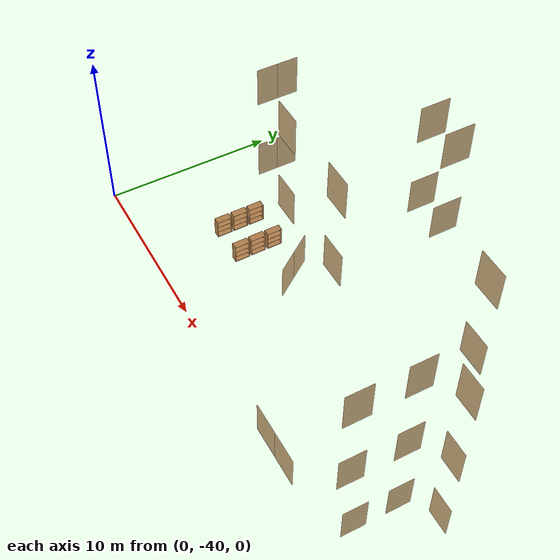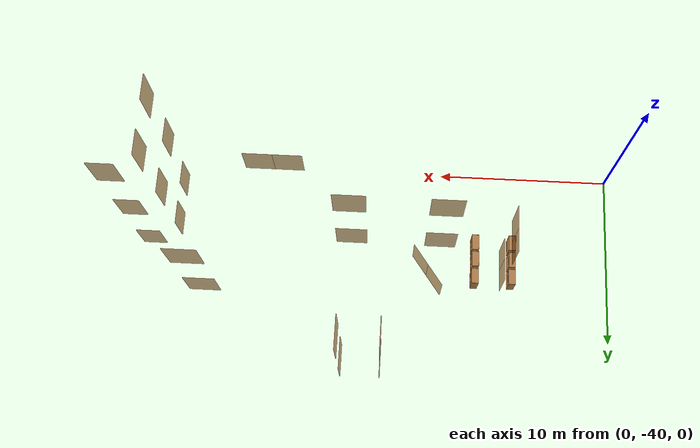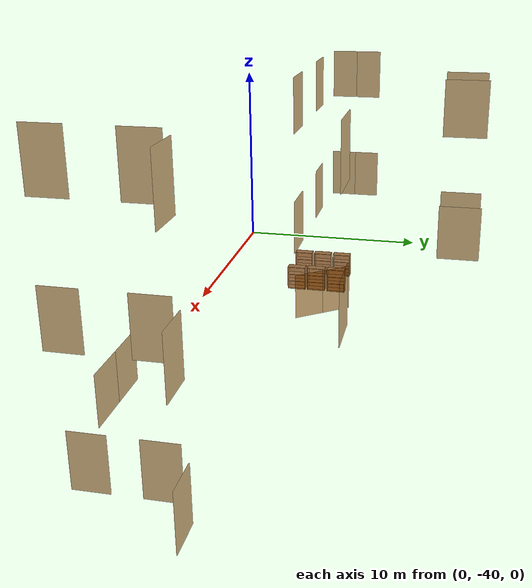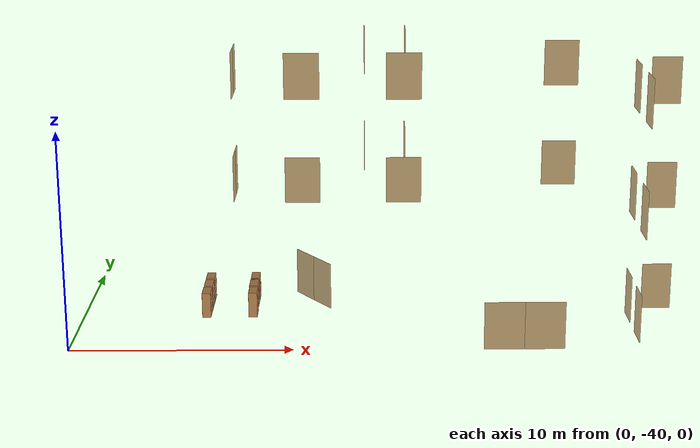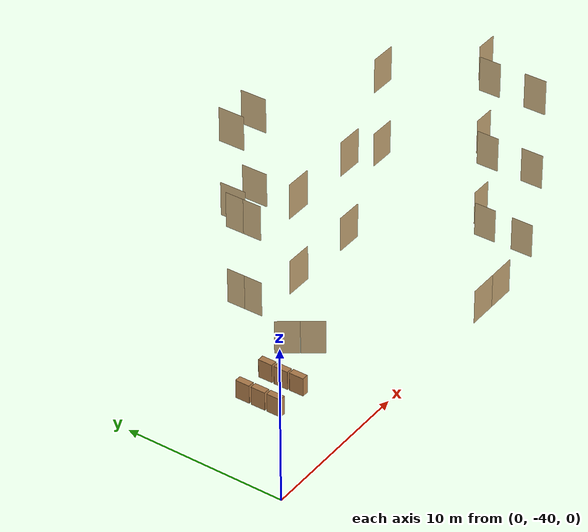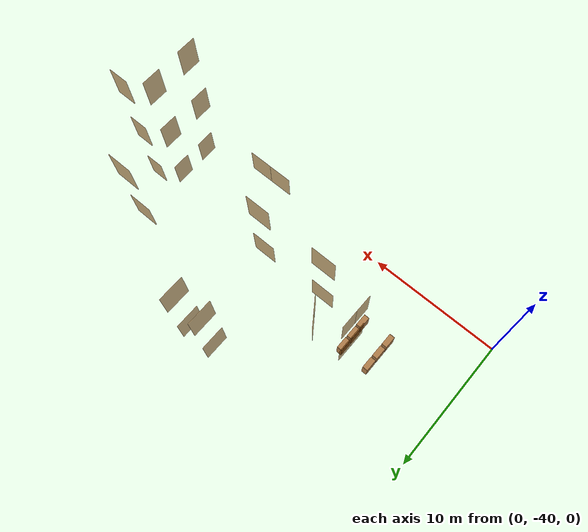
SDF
<sdf version="1.7">
 <world name="world">
  <include><uri>model://sun</uri></include>
  <include>
   <name>OpenRobotics/Bookshelf</name>
   <uri>model://Bookshelf</uri>
   <pose>7.7139641843624664 -35.508689695664955 0.0 0 0 1.5708</pose>
   <static>True</static>
  </include>
  <include>
   <name>OpenRobotics/Bookshelf_2</name>
   <uri>model://Bookshelf</uri>
   <pose>7.694500440356203 -34.4870372182536 0.0 0 0 1.5708</pose>
   <static>True</static>
  </include>
  <include>
   <name>OpenRobotics/Bookshelf_3</name>
   <uri>model://Bookshelf</uri>
   <pose>7.704204586228271 -33.44592099683598 0.0 0 0 1.5708</pose>
   <static>True</static>
  </include>
  <include>
   <name>OpenRobotics/Bookshelf_4</name>
   <uri>model://Bookshelf</uri>
   <pose>5.544117167367978 -35.54761718367748 0.0 0 0 1.5708</pose>
   <static>True</static>
  </include>
  <include>
   <name>OpenRobotics/Bookshelf_5</name>
   <uri>model://Bookshelf</uri>
   <pose>5.544117167367978 -34.51620510813193 0.0 0 0 1.5708</pose>
   <static>True</static>
  </include>
  <include>
   <name>OpenRobotics/Bookshelf_6</name>
   <uri>model://Bookshelf</uri>
   <pose>5.544117167367978 -33.484848484848506 0.0 0 0 1.5708</pose>
   <static>True</static>
  </include>
  <model name="L1_door1">
   <pose>10.709634015069973 -33.66240662817629 0.0 0 0 2.1908053757712316</pose>
   <link name="right">
    <pose>0.7171762283854256 0 1.11 0 0 0</pose>
    <visual name="right_visual">
     <geometry><box><size>1.4243524567708512 0.03 2.2</size></box></geometry>
     <material><ambient>0.5 0.25 0 0.6</ambient><diffuse>0.5 0.25 0 0.6</diffuse></material>
    </visual>
    <collision name="right_collision">
     <geometry><box><size>1.4243524567708512 0.03 2.2</size></box></geometry>
     <surface><contact><collide_bitmask>0x02</collide_bitmask></contact></surface>
    </collision>
    <inertial>
     <mass>50.0</mass>
     <inertia><ixx>20.17041666666667</ixx><iyy>28.619916337954837</iyy><izz>8.456999671288166</izz></inertia>
    </inertial>
   </link>
   <joint name="right_joint" type="revolute">
    <parent>world</parent>
    <child>right</child>
    <axis><xyz>0 0 1</xyz><limit><lower>0</lower><upper>1.57</upper></limit></axis>
    <pose>0.7171762283854256 0 0 0 0 0</pose>
   </joint>
   <link name="left">
    <pose>-0.7171762283854256 0 1.11 0 0 0</pose>
    <visual name="left_visual">
     <geometry><box><size>1.4243524567708512 0.03 2.2</size></box></geometry>
     <material><ambient>0.5 0.25 0 0.6</ambient><diffuse>0.5 0.25 0 0.6</diffuse></material>
    </visual>
    <collision name="left_collision">
     <geometry><box><size>1.4243524567708512 0.03 2.2</size></box></geometry>
     <surface><contact><collide_bitmask>0x02</collide_bitmask></contact></surface>
    </collision>
    <inertial>
     <mass>50.0</mass>
     <inertia><ixx>20.17041666666667</ixx><iyy>28.619916337954837</iyy><izz>8.456999671288166</izz></inertia>
    </inertial>
   </link>
   <joint name="left_joint" type="revolute">
    <parent>world</parent>
    <child>left</child>
    <axis><xyz>0 0 1</xyz><limit><lower>-1.57</lower><upper>0</upper></limit></axis>
    <pose>-0.7171762283854256 0 0 0 0 0</pose>
   </joint>
   <plugin name="double_hinged_door" filename="libdouble_hinged_door_plugin.so">
    <ros><namespace>/doors/L1_door1</namespace></ros>
    <right_joint>right_joint</right_joint>
    <left_joint>left_joint</left_joint>
    <open_angle>1.57</open_angle>
    <kp>150.0</kp>
    <kd>80.0</kd>
   </plugin>
  </model>
  <model name="L1_door3">
   <pose>20.250916593273978 -40.03653325504781 0.0 0 0 3.141592653589793</pose>
   <link name="right">
    <pose>0.9032757608376549 0 1.11 0 0 0</pose>
    <visual name="right_visual">
     <geometry><box><size>1.7965515216753098 0.03 2.2</size></box></geometry>
     <material><ambient>0.5 0.25 0 0.6</ambient><diffuse>0.5 0.25 0 0.6</diffuse></material>
    </visual>
    <collision name="right_collision">
     <geometry><box><size>1.7965515216753098 0.03 2.2</size></box></geometry>
     <surface><contact><collide_bitmask>0x02</collide_bitmask></contact></surface>
    </collision>
    <inertial>
     <mass>50.0</mass>
     <inertia><ixx>20.17041666666667</ixx><iyy>33.61498904180781</iyy><izz>13.452072375141132</izz></inertia>
    </inertial>
   </link>
   <joint name="right_joint" type="prismatic">
    <parent>world</parent>
    <child>right</child>
    <axis>
     <xyz>1 0 0</xyz>
     <limit><lower>0.0</lower><upper>1.8065515216753099</upper><effort>500.0</effort></limit>
    </axis>
   </joint>
   <link name="left">
    <pose>-0.9032757608376549 0 1.11 0 0 0</pose>
    <visual name="left_visual">
     <geometry><box><size>1.7965515216753098 0.03 2.2</size></box></geometry>
     <material><ambient>0.5 0.25 0 0.6</ambient><diffuse>0.5 0.25 0 0.6</diffuse></material>
    </visual>
    <collision name="left_collision">
     <geometry><box><size>1.7965515216753098 0.03 2.2</size></box></geometry>
     <surface><contact><collide_bitmask>0x02</collide_bitmask></contact></surface>
    </collision>
    <inertial>
     <mass>50.0</mass>
     <inertia><ixx>20.17041666666667</ixx><iyy>33.61498904180781</iyy><izz>13.452072375141132</izz></inertia>
    </inertial>
   </link>
   <joint name="left_joint" type="prismatic">
    <parent>world</parent>
    <child>left</child>
    <axis>
     <xyz>1 0 0</xyz>
     <limit><lower>-1.8065515216753099</lower><upper>0.0</upper><effort>500.0</effort></limit>
    </axis>
   </joint>
   <plugin name="double_sliding_door" filename="libdouble_sliding_door_plugin.so">
    <ros><namespace>/doors/L1_door3</namespace></ros>
    <right_joint>right_joint</right_joint>
    <left_joint>left_joint</left_joint>
    <open_distance>1.3</open_distance>
    <kp>100.0</kp>
    <kd>120.0</kd>
   </plugin>
  </model>
  <model name="L1_door_stair2">
   <pose>27.032977786476188 -34.93492513944615 0.0 0 0 3.141592653589793</pose>
   <link name="right">
    <pose>0 0 1.11 0 0 0</pose>
    <visual name="right_visual">
     <geometry><box><size>1.3763065531526253 0.03 2.2</size></box></geometry>
     <material><ambient>0.5 0.25 0 0.6</ambient><diffuse>0.5 0.25 0 0.6</diffuse></material>
    </visual>
    <collision name="right_collision">
     <geometry><box><size>1.3763065531526253 0.03 2.2</size></box></geometry>
     <surface><contact><collide_bitmask>0x02</collide_bitmask></contact></surface>
    </collision>
    <inertial>
     <mass>50.0</mass>
     <inertia><ixx>20.17041666666667</ixx><iyy>28.059248867711922</iyy><izz>7.896332201045251</izz></inertia>
    </inertial>
   </link>
   <joint name="right_joint" type="revolute">
    <parent>world</parent>
    <child>right</child>
    <axis><xyz>0 0 1</xyz><limit><lower>0</lower><upper>1.57</upper></limit></axis>
    <pose>0.6931532765763126 0 0 0 0 0</pose>
   </joint>
   <plugin name="single_hinged_door" filename="libsingle_hinged_door_plugin.so">
    <ros><namespace>/doors/L1_door_stair2</namespace></ros>
    <right_joint>right_joint</right_joint>
    <open_angle>1.57</open_angle>
    <kp>150.0</kp>
    <kd>80.0</kd>
   </plugin>
  </model>
  <model name="L1_door_toilet">
   <pose>25.5080405780083 -38.67795283295823 0.0 0 0 1.5707963267948966</pose>
   <link name="right">
    <pose>0 0 1.11 0 0 0</pose>
    <visual name="right_visual">
     <geometry><box><size>1.3763065531526217 0.03 2.2</size></box></geometry>
     <material><ambient>0.5 0.25 0 0.6</ambient><diffuse>0.5 0.25 0 0.6</diffuse></material>
    </visual>
    <collision name="right_collision">
     <geometry><box><size>1.3763065531526217 0.03 2.2</size></box></geometry>
     <surface><contact><collide_bitmask>0x02</collide_bitmask></contact></surface>
    </collision>
    <inertial>
     <mass>50.0</mass>
     <inertia><ixx>20.17041666666667</ixx><iyy>28.059248867711883</iyy><izz>7.89633220104521</izz></inertia>
    </inertial>
   </link>
   <joint name="right_joint" type="revolute">
    <parent>world</parent>
    <child>right</child>
    <axis><xyz>0 0 1</xyz><limit><lower>0</lower><upper>1.57</upper></limit></axis>
    <pose>0.6931532765763109 0 0 0 0 0</pose>
   </joint>
   <plugin name="single_hinged_door" filename="libsingle_hinged_door_plugin.so">
    <ros><namespace>/doors/L1_door_toilet</namespace></ros>
    <right_joint>right_joint</right_joint>
    <open_angle>1.57</open_angle>
    <kp>150.0</kp>
    <kd>80.0</kd>
   </plugin>
  </model>
  <model name="L1_door_stair1">
   <pose>25.5080405780083 -36.18260103728351 0.0 0 0 -1.5707963267948966</pose>
   <link name="right">
    <pose>0 0 1.11 0 0 0</pose>
    <visual name="right_visual">
     <geometry><box><size>1.3763065531526217 0.03 2.2</size></box></geometry>
     <material><ambient>0.5 0.25 0 0.6</ambient><diffuse>0.5 0.25 0 0.6</diffuse></material>
    </visual>
    <collision name="right_collision">
     <geometry><box><size>1.3763065531526217 0.03 2.2</size></box></geometry>
     <surface><contact><collide_bitmask>0x02</collide_bitmask></contact></surface>
    </collision>
    <inertial>
     <mass>50.0</mass>
     <inertia><ixx>20.17041666666667</ixx><iyy>28.059248867711883</iyy><izz>7.89633220104521</izz></inertia>
    </inertial>
   </link>
   <joint name="right_joint" type="revolute">
    <parent>world</parent>
    <child>right</child>
    <axis><xyz>0 0 -1</xyz><limit><lower>0</lower><upper>1.57</upper></limit></axis>
    <pose>0.6931532765763109 0 0 0 0 0</pose>
   </joint>
   <plugin name="single_hinged_door" filename="libsingle_hinged_door_plugin.so">
    <ros><namespace>/doors/L1_door_stair1</namespace></ros>
    <right_joint>right_joint</right_joint>
    <open_angle>1.57</open_angle>
    <kp>150.0</kp>
    <kd>80.0</kd>
   </plugin>
  </model>
  <model name="L2_door10">
   <pose>6.967646280829374 -32.68448629721379 5.0 0 0 1.5705221665011055</pose>
   <link name="right">
    <pose>0.5645263305892074 0 1.11 0 0 0</pose>
    <visual name="right_visual">
     <geometry><box><size>1.1190526611784148 0.03 2.2</size></box></geometry>
     <material><ambient>0.5 0.25 0 0.6</ambient><diffuse>0.5 0.25 0 0.6</diffuse></material>
    </visual>
    <collision name="right_collision">
     <geometry><box><size>1.1190526611784148 0.03 2.2</size></box></geometry>
     <surface><contact><collide_bitmask>0x02</collide_bitmask></contact></surface>
    </collision>
    <inertial>
     <mass>50.0</mass>
     <inertia><ixx>20.17041666666667</ixx><iyy>25.38449524371039</iyy><izz>5.221578577043717</izz></inertia>
    </inertial>
   </link>
   <joint name="right_joint" type="revolute">
    <parent>world</parent>
    <child>right</child>
    <axis><xyz>0 0 -1</xyz><limit><lower>0</lower><upper>1.57</upper></limit></axis>
    <pose>0.5645263305892074 0 0 0 0 0</pose>
   </joint>
   <link name="left">
    <pose>-0.5645263305892074 0 1.11 0 0 0</pose>
    <visual name="left_visual">
     <geometry><box><size>1.1190526611784148 0.03 2.2</size></box></geometry>
     <material><ambient>0.5 0.25 0 0.6</ambient><diffuse>0.5 0.25 0 0.6</diffuse></material>
    </visual>
    <collision name="left_collision">
     <geometry><box><size>1.1190526611784148 0.03 2.2</size></box></geometry>
     <surface><contact><collide_bitmask>0x02</collide_bitmask></contact></surface>
    </collision>
    <inertial>
     <mass>50.0</mass>
     <inertia><ixx>20.17041666666667</ixx><iyy>25.38449524371039</iyy><izz>5.221578577043717</izz></inertia>
    </inertial>
   </link>
   <joint name="left_joint" type="revolute">
    <parent>world</parent>
    <child>left</child>
    <axis><xyz>0 0 -1</xyz><limit><lower>-1.57</lower><upper>0</upper></limit></axis>
    <pose>-0.5645263305892074 0 0 0 0 0</pose>
   </joint>
   <plugin name="double_hinged_door" filename="libdouble_hinged_door_plugin.so">
    <ros><namespace>/doors/L2_door10</namespace></ros>
    <right_joint>right_joint</right_joint>
    <left_joint>left_joint</left_joint>
    <open_angle>1.57</open_angle>
    <kp>150.0</kp>
    <kd>80.0</kd>
   </plugin>
  </model>
  <model name="L2_door8">
   <pose>15.236484194825934 -27.379453744808572 5.0 0 0 1.5705221665011058</pose>
   <link name="right">
    <pose>0 0 1.11 0 0 0</pose>
    <visual name="right_visual">
     <geometry><box><size>1.6545737934173281 0.03 2.2</size></box></geometry>
     <material><ambient>0.5 0.25 0 0.6</ambient><diffuse>0.5 0.25 0 0.6</diffuse></material>
    </visual>
    <collision name="right_collision">
     <geometry><box><size>1.6545737934173281 0.03 2.2</size></box></geometry>
     <surface><contact><collide_bitmask>0x02</collide_bitmask></contact></surface>
    </collision>
    <inertial>
     <mass>50.0</mass>
     <inertia><ixx>20.17041666666667</ixx><iyy>31.573393491097537</iyy><izz>11.410476824430864</izz></inertia>
    </inertial>
   </link>
   <joint name="right_joint" type="revolute">
    <parent>world</parent>
    <child>right</child>
    <axis><xyz>0 0 1</xyz><limit><lower>0</lower><upper>1.57</upper></limit></axis>
    <pose>0.8322868967086641 0 0 0 0 0</pose>
   </joint>
   <plugin name="single_hinged_door" filename="libsingle_hinged_door_plugin.so">
    <ros><namespace>/doors/L2_door8</namespace></ros>
    <right_joint>right_joint</right_joint>
    <open_angle>1.57</open_angle>
    <kp>150.0</kp>
    <kd>80.0</kd>
   </plugin>
  </model>
  <model name="L2_door9">
   <pose>22.726107627620856 -30.877112199768717 5.0 0 0 3.1413184932960023</pose>
   <link name="right">
    <pose>0 0 1.11 0 0 0</pose>
    <visual name="right_visual">
     <geometry><box><size>1.6545737934173281 0.03 2.2</size></box></geometry>
     <material><ambient>0.5 0.25 0 0.6</ambient><diffuse>0.5 0.25 0 0.6</diffuse></material>
    </visual>
    <collision name="right_collision">
     <geometry><box><size>1.6545737934173281 0.03 2.2</size></box></geometry>
     <surface><contact><collide_bitmask>0x02</collide_bitmask></contact></surface>
    </collision>
    <inertial>
     <mass>50.0</mass>
     <inertia><ixx>20.17041666666667</ixx><iyy>31.573393491097537</iyy><izz>11.410476824430864</izz></inertia>
    </inertial>
   </link>
   <joint name="right_joint" type="revolute">
    <parent>world</parent>
    <child>right</child>
    <axis><xyz>0 0 1</xyz><limit><lower>0</lower><upper>1.57</upper></limit></axis>
    <pose>0.8322868967086641 0 0 0 0 0</pose>
   </joint>
   <plugin name="single_hinged_door" filename="libsingle_hinged_door_plugin.so">
    <ros><namespace>/doors/L2_door9</namespace></ros>
    <right_joint>right_joint</right_joint>
    <open_angle>1.57</open_angle>
    <kp>150.0</kp>
    <kd>80.0</kd>
   </plugin>
  </model>
  <model name="L2_door7">
   <pose>13.183509926765973 -27.378890900765995 5.0 0 0 1.5705221665011058</pose>
   <link name="right">
    <pose>0 0 1.11 0 0 0</pose>
    <visual name="right_visual">
     <geometry><box><size>1.6545737934173281 0.03 2.2</size></box></geometry>
     <material><ambient>0.5 0.25 0 0.6</ambient><diffuse>0.5 0.25 0 0.6</diffuse></material>
    </visual>
    <collision name="right_collision">
     <geometry><box><size>1.6545737934173281 0.03 2.2</size></box></geometry>
     <surface><contact><collide_bitmask>0x02</collide_bitmask></contact></surface>
    </collision>
    <inertial>
     <mass>50.0</mass>
     <inertia><ixx>20.17041666666667</ixx><iyy>31.573393491097537</iyy><izz>11.410476824430864</izz></inertia>
    </inertial>
   </link>
   <joint name="right_joint" type="revolute">
    <parent>world</parent>
    <child>right</child>
    <axis><xyz>0 0 -1</xyz><limit><lower>0</lower><upper>1.57</upper></limit></axis>
    <pose>0.8322868967086641 0 0 0 0 0</pose>
   </joint>
   <plugin name="single_hinged_door" filename="libsingle_hinged_door_plugin.so">
    <ros><namespace>/doors/L2_door7</namespace></ros>
    <right_joint>right_joint</right_joint>
    <open_angle>1.57</open_angle>
    <kp>150.0</kp>
    <kd>80.0</kd>
   </plugin>
  </model>
  <model name="L2_door11">
   <pose>10.240967986111862 -33.92540800608541 5.0 0 0 3.1413184932960045</pose>
   <link name="right">
    <pose>0 0 1.11 0 0 0</pose>
    <visual name="right_visual">
     <geometry><box><size>1.6545737934173281 0.03 2.2</size></box></geometry>
     <material><ambient>0.5 0.25 0 0.6</ambient><diffuse>0.5 0.25 0 0.6</diffuse></material>
    </visual>
    <collision name="right_collision">
     <geometry><box><size>1.6545737934173281 0.03 2.2</size></box></geometry>
     <surface><contact><collide_bitmask>0x02</collide_bitmask></contact></surface>
    </collision>
    <inertial>
     <mass>50.0</mass>
     <inertia><ixx>20.17041666666667</ixx><iyy>31.573393491097537</iyy><izz>11.410476824430864</izz></inertia>
    </inertial>
   </link>
   <joint name="right_joint" type="revolute">
    <parent>world</parent>
    <child>right</child>
    <axis><xyz>0 0 -1</xyz><limit><lower>0</lower><upper>1.57</upper></limit></axis>
    <pose>0.8322868967086641 0 0 0 0 0</pose>
   </joint>
   <plugin name="single_hinged_door" filename="libsingle_hinged_door_plugin.so">
    <ros><namespace>/doors/L2_door11</namespace></ros>
    <right_joint>right_joint</right_joint>
    <open_angle>1.57</open_angle>
    <kp>150.0</kp>
    <kd>80.0</kd>
   </plugin>
  </model>
  <model name="L2_door12">
   <pose>15.012746014575553 -33.92671623818438 5.0 0 0 3.1413184932960045</pose>
   <link name="right">
    <pose>0 0 1.11 0 0 0</pose>
    <visual name="right_visual">
     <geometry><box><size>1.6545737934173281 0.03 2.2</size></box></geometry>
     <material><ambient>0.5 0.25 0 0.6</ambient><diffuse>0.5 0.25 0 0.6</diffuse></material>
    </visual>
    <collision name="right_collision">
     <geometry><box><size>1.6545737934173281 0.03 2.2</size></box></geometry>
     <surface><contact><collide_bitmask>0x02</collide_bitmask></contact></surface>
    </collision>
    <inertial>
     <mass>50.0</mass>
     <inertia><ixx>20.17041666666667</ixx><iyy>31.573393491097537</iyy><izz>11.410476824430864</izz></inertia>
    </inertial>
   </link>
   <joint name="right_joint" type="revolute">
    <parent>world</parent>
    <child>right</child>
    <axis><xyz>0 0 -1</xyz><limit><lower>0</lower><upper>1.57</upper></limit></axis>
    <pose>0.8322868967086641 0 0 0 0 0</pose>
   </joint>
   <plugin name="single_hinged_door" filename="libsingle_hinged_door_plugin.so">
    <ros><namespace>/doors/L2_door12</namespace></ros>
    <right_joint>right_joint</right_joint>
    <open_angle>1.57</open_angle>
    <kp>150.0</kp>
    <kd>80.0</kd>
   </plugin>
  </model>
  <model name="L2_door_stair1">
   <pose>25.49893682694276 -36.20450873857642 5.0 0 0 -1.5710704870886905</pose>
   <link name="right">
    <pose>0 0 1.11 0 0 0</pose>
    <visual name="right_visual">
     <geometry><box><size>1.3771448278477716 0.03 2.2</size></box></geometry>
     <material><ambient>0.5 0.25 0 0.6</ambient><diffuse>0.5 0.25 0 0.6</diffuse></material>
    </visual>
    <collision name="right_collision">
     <geometry><box><size>1.3771448278477716 0.03 2.2</size></box></geometry>
     <surface><contact><collide_bitmask>0x02</collide_bitmask></contact></surface>
    </collision>
    <inertial>
     <mass>50.0</mass>
     <inertia><ixx>20.17041666666667</ixx><iyy>28.068866153616124</iyy><izz>7.905949486949452</izz></inertia>
    </inertial>
   </link>
   <joint name="right_joint" type="revolute">
    <parent>world</parent>
    <child>right</child>
    <axis><xyz>0 0 -1</xyz><limit><lower>0</lower><upper>1.57</upper></limit></axis>
    <pose>0.6935724139238858 0 0 0 0 0</pose>
   </joint>
   <plugin name="single_hinged_door" filename="libsingle_hinged_door_plugin.so">
    <ros><namespace>/doors/L2_door_stair1</namespace></ros>
    <right_joint>right_joint</right_joint>
    <open_angle>1.57</open_angle>
    <kp>150.0</kp>
    <kd>80.0</kd>
   </plugin>
  </model>
  <model name="L2_door_stair2">
   <pose>27.025138350256462 -34.9564967704635 5.0 0 0 3.141318493295999</pose>
   <link name="right">
    <pose>0 0 1.11 0 0 0</pose>
    <visual name="right_visual">
     <geometry><box><size>1.3771448278477751 0.03 2.2</size></box></geometry>
     <material><ambient>0.5 0.25 0 0.6</ambient><diffuse>0.5 0.25 0 0.6</diffuse></material>
    </visual>
    <collision name="right_collision">
     <geometry><box><size>1.3771448278477751 0.03 2.2</size></box></geometry>
     <surface><contact><collide_bitmask>0x02</collide_bitmask></contact></surface>
    </collision>
    <inertial>
     <mass>50.0</mass>
     <inertia><ixx>20.17041666666667</ixx><iyy>28.068866153616163</iyy><izz>7.905949486949493</izz></inertia>
    </inertial>
   </link>
   <joint name="right_joint" type="revolute">
    <parent>world</parent>
    <child>right</child>
    <axis><xyz>0 0 1</xyz><limit><lower>0</lower><upper>1.57</upper></limit></axis>
    <pose>0.6935724139238876 0 0 0 0 0</pose>
   </joint>
   <plugin name="single_hinged_door" filename="libsingle_hinged_door_plugin.so">
    <ros><namespace>/doors/L2_door_stair2</namespace></ros>
    <right_joint>right_joint</right_joint>
    <open_angle>1.57</open_angle>
    <kp>150.0</kp>
    <kd>80.0</kd>
   </plugin>
  </model>
  <model name="L2_door_restricted_area">
   <pose>25.49813059088177 -39.145255663094744 5.0 0 0 1.5705221665011053</pose>
   <link name="right">
    <pose>0 0 1.11 0 0 0</pose>
    <visual name="right_visual">
     <geometry><box><size>1.3771448278477787 0.03 2.2</size></box></geometry>
     <material><ambient>0.5 0.25 0 0.6</ambient><diffuse>0.5 0.25 0 0.6</diffuse></material>
    </visual>
    <collision name="right_collision">
     <geometry><box><size>1.3771448278477787 0.03 2.2</size></box></geometry>
     <surface><contact><collide_bitmask>0x02</collide_bitmask></contact></surface>
    </collision>
    <inertial>
     <mass>50.0</mass>
     <inertia><ixx>20.17041666666667</ixx><iyy>28.068866153616206</iyy><izz>7.905949486949533</izz></inertia>
    </inertial>
   </link>
   <joint name="right_joint" type="prismatic">
    <parent>world</parent>
    <child>right</child>
    <axis>
     <xyz>1 0 0</xyz>
     <limit><lower>0.0</lower><upper>1.3871448278477787</upper><effort>500.0</effort></limit>
    </axis>
   </joint>
   <plugin name="single_sliding_door" filename="libsingle_sliding_door_plugin.so">
    <ros><namespace>/doors/L2_door_restricted_area</namespace></ros>
    <right_joint>right_joint</right_joint>
    <open_distance>1.3</open_distance>
    <kp>100.0</kp>
    <kd>120.0</kd>
   </plugin>
  </model>
  <model name="L3_door10">
   <pose>6.967646280829374 -32.68448629721379 10.0 0 0 1.5705221665011055</pose>
   <link name="right">
    <pose>0.5645263305892074 0 1.11 0 0 0</pose>
    <visual name="right_visual">
     <geometry><box><size>1.1190526611784148 0.03 2.2</size></box></geometry>
     <material><ambient>0.5 0.25 0 0.6</ambient><diffuse>0.5 0.25 0 0.6</diffuse></material>
    </visual>
    <collision name="right_collision">
     <geometry><box><size>1.1190526611784148 0.03 2.2</size></box></geometry>
     <surface><contact><collide_bitmask>0x02</collide_bitmask></contact></surface>
    </collision>
    <inertial>
     <mass>50.0</mass>
     <inertia><ixx>20.17041666666667</ixx><iyy>25.38449524371039</iyy><izz>5.221578577043717</izz></inertia>
    </inertial>
   </link>
   <joint name="right_joint" type="revolute">
    <parent>world</parent>
    <child>right</child>
    <axis><xyz>0 0 -1</xyz><limit><lower>0</lower><upper>1.57</upper></limit></axis>
    <pose>0.5645263305892074 0 0 0 0 0</pose>
   </joint>
   <link name="left">
    <pose>-0.5645263305892074 0 1.11 0 0 0</pose>
    <visual name="left_visual">
     <geometry><box><size>1.1190526611784148 0.03 2.2</size></box></geometry>
     <material><ambient>0.5 0.25 0 0.6</ambient><diffuse>0.5 0.25 0 0.6</diffuse></material>
    </visual>
    <collision name="left_collision">
     <geometry><box><size>1.1190526611784148 0.03 2.2</size></box></geometry>
     <surface><contact><collide_bitmask>0x02</collide_bitmask></contact></surface>
    </collision>
    <inertial>
     <mass>50.0</mass>
     <inertia><ixx>20.17041666666667</ixx><iyy>25.38449524371039</iyy><izz>5.221578577043717</izz></inertia>
    </inertial>
   </link>
   <joint name="left_joint" type="revolute">
    <parent>world</parent>
    <child>left</child>
    <axis><xyz>0 0 -1</xyz><limit><lower>-1.57</lower><upper>0</upper></limit></axis>
    <pose>-0.5645263305892074 0 0 0 0 0</pose>
   </joint>
   <plugin name="double_hinged_door" filename="libdouble_hinged_door_plugin.so">
    <ros><namespace>/doors/L3_door10</namespace></ros>
    <right_joint>right_joint</right_joint>
    <left_joint>left_joint</left_joint>
    <open_angle>1.57</open_angle>
    <kp>150.0</kp>
    <kd>80.0</kd>
   </plugin>
  </model>
  <model name="L3_door8">
   <pose>15.236484194825934 -27.379453744808572 10.0 0 0 1.5705221665011058</pose>
   <link name="right">
    <pose>0 0 1.11 0 0 0</pose>
    <visual name="right_visual">
     <geometry><box><size>1.6545737934173281 0.03 2.2</size></box></geometry>
     <material><ambient>0.5 0.25 0 0.6</ambient><diffuse>0.5 0.25 0 0.6</diffuse></material>
    </visual>
    <collision name="right_collision">
     <geometry><box><size>1.6545737934173281 0.03 2.2</size></box></geometry>
     <surface><contact><collide_bitmask>0x02</collide_bitmask></contact></surface>
    </collision>
    <inertial>
     <mass>50.0</mass>
     <inertia><ixx>20.17041666666667</ixx><iyy>31.573393491097537</iyy><izz>11.410476824430864</izz></inertia>
    </inertial>
   </link>
   <joint name="right_joint" type="revolute">
    <parent>world</parent>
    <child>right</child>
    <axis><xyz>0 0 1</xyz><limit><lower>0</lower><upper>1.57</upper></limit></axis>
    <pose>0.8322868967086641 0 0 0 0 0</pose>
   </joint>
   <plugin name="single_hinged_door" filename="libsingle_hinged_door_plugin.so">
    <ros><namespace>/doors/L3_door8</namespace></ros>
    <right_joint>right_joint</right_joint>
    <open_angle>1.57</open_angle>
    <kp>150.0</kp>
    <kd>80.0</kd>
   </plugin>
  </model>
  <model name="L3_door9">
   <pose>22.726107627620856 -30.877112199768717 10.0 0 0 3.1413184932960023</pose>
   <link name="right">
    <pose>0 0 1.11 0 0 0</pose>
    <visual name="right_visual">
     <geometry><box><size>1.6545737934173281 0.03 2.2</size></box></geometry>
     <material><ambient>0.5 0.25 0 0.6</ambient><diffuse>0.5 0.25 0 0.6</diffuse></material>
    </visual>
    <collision name="right_collision">
     <geometry><box><size>1.6545737934173281 0.03 2.2</size></box></geometry>
     <surface><contact><collide_bitmask>0x02</collide_bitmask></contact></surface>
    </collision>
    <inertial>
     <mass>50.0</mass>
     <inertia><ixx>20.17041666666667</ixx><iyy>31.573393491097537</iyy><izz>11.410476824430864</izz></inertia>
    </inertial>
   </link>
   <joint name="right_joint" type="revolute">
    <parent>world</parent>
    <child>right</child>
    <axis><xyz>0 0 1</xyz><limit><lower>0</lower><upper>1.57</upper></limit></axis>
    <pose>0.8322868967086641 0 0 0 0 0</pose>
   </joint>
   <plugin name="single_hinged_door" filename="libsingle_hinged_door_plugin.so">
    <ros><namespace>/doors/L3_door9</namespace></ros>
    <right_joint>right_joint</right_joint>
    <open_angle>1.57</open_angle>
    <kp>150.0</kp>
    <kd>80.0</kd>
   </plugin>
  </model>
  <model name="L3_door12">
   <pose>15.012746014575553 -33.92671623818438 10.0 0 0 3.1413184932960045</pose>
   <link name="right">
    <pose>0 0 1.11 0 0 0</pose>
    <visual name="right_visual">
     <geometry><box><size>1.6545737934173281 0.03 2.2</size></box></geometry>
     <material><ambient>0.5 0.25 0 0.6</ambient><diffuse>0.5 0.25 0 0.6</diffuse></material>
    </visual>
    <collision name="right_collision">
     <geometry><box><size>1.6545737934173281 0.03 2.2</size></box></geometry>
     <surface><contact><collide_bitmask>0x02</collide_bitmask></contact></surface>
    </collision>
    <inertial>
     <mass>50.0</mass>
     <inertia><ixx>20.17041666666667</ixx><iyy>31.573393491097537</iyy><izz>11.410476824430864</izz></inertia>
    </inertial>
   </link>
   <joint name="right_joint" type="revolute">
    <parent>world</parent>
    <child>right</child>
    <axis><xyz>0 0 -1</xyz><limit><lower>0</lower><upper>1.57</upper></limit></axis>
    <pose>0.8322868967086641 0 0 0 0 0</pose>
   </joint>
   <plugin name="single_hinged_door" filename="libsingle_hinged_door_plugin.so">
    <ros><namespace>/doors/L3_door12</namespace></ros>
    <right_joint>right_joint</right_joint>
    <open_angle>1.57</open_angle>
    <kp>150.0</kp>
    <kd>80.0</kd>
   </plugin>
  </model>
  <model name="L3_door11">
   <pose>10.240967986111862 -33.92540800608541 10.0 0 0 3.1413184932960045</pose>
   <link name="right">
    <pose>0 0 1.11 0 0 0</pose>
    <visual name="right_visual">
     <geometry><box><size>1.6545737934173281 0.03 2.2</size></box></geometry>
     <material><ambient>0.5 0.25 0 0.6</ambient><diffuse>0.5 0.25 0 0.6</diffuse></material>
    </visual>
    <collision name="right_collision">
     <geometry><box><size>1.6545737934173281 0.03 2.2</size></box></geometry>
     <surface><contact><collide_bitmask>0x02</collide_bitmask></contact></surface>
    </collision>
    <inertial>
     <mass>50.0</mass>
     <inertia><ixx>20.17041666666667</ixx><iyy>31.573393491097537</iyy><izz>11.410476824430864</izz></inertia>
    </inertial>
   </link>
   <joint name="right_joint" type="revolute">
    <parent>world</parent>
    <child>right</child>
    <axis><xyz>0 0 -1</xyz><limit><lower>0</lower><upper>1.57</upper></limit></axis>
    <pose>0.8322868967086641 0 0 0 0 0</pose>
   </joint>
   <plugin name="single_hinged_door" filename="libsingle_hinged_door_plugin.so">
    <ros><namespace>/doors/L3_door11</namespace></ros>
    <right_joint>right_joint</right_joint>
    <open_angle>1.57</open_angle>
    <kp>150.0</kp>
    <kd>80.0</kd>
   </plugin>
  </model>
  <model name="L3_door7">
   <pose>13.183509926765973 -27.378890900765995 10.0 0 0 1.5705221665011058</pose>
   <link name="right">
    <pose>0 0 1.11 0 0 0</pose>
    <visual name="right_visual">
     <geometry><box><size>1.6545737934173281 0.03 2.2</size></box></geometry>
     <material><ambient>0.5 0.25 0 0.6</ambient><diffuse>0.5 0.25 0 0.6</diffuse></material>
    </visual>
    <collision name="right_collision">
     <geometry><box><size>1.6545737934173281 0.03 2.2</size></box></geometry>
     <surface><contact><collide_bitmask>0x02</collide_bitmask></contact></surface>
    </collision>
    <inertial>
     <mass>50.0</mass>
     <inertia><ixx>20.17041666666667</ixx><iyy>31.573393491097537</iyy><izz>11.410476824430864</izz></inertia>
    </inertial>
   </link>
   <joint name="right_joint" type="revolute">
    <parent>world</parent>
    <child>right</child>
    <axis><xyz>0 0 -1</xyz><limit><lower>0</lower><upper>1.57</upper></limit></axis>
    <pose>0.8322868967086641 0 0 0 0 0</pose>
   </joint>
   <plugin name="single_hinged_door" filename="libsingle_hinged_door_plugin.so">
    <ros><namespace>/doors/L3_door7</namespace></ros>
    <right_joint>right_joint</right_joint>
    <open_angle>1.57</open_angle>
    <kp>150.0</kp>
    <kd>80.0</kd>
   </plugin>
  </model>
  <model name="L3_door_stair2">
   <pose>27.025138350256462 -34.9564967704635 10.0 0 0 3.141318493295999</pose>
   <link name="right">
    <pose>0 0 1.11 0 0 0</pose>
    <visual name="right_visual">
     <geometry><box><size>1.3771448278477751 0.03 2.2</size></box></geometry>
     <material><ambient>0.5 0.25 0 0.6</ambient><diffuse>0.5 0.25 0 0.6</diffuse></material>
    </visual>
    <collision name="right_collision">
     <geometry><box><size>1.3771448278477751 0.03 2.2</size></box></geometry>
     <surface><contact><collide_bitmask>0x02</collide_bitmask></contact></surface>
    </collision>
    <inertial>
     <mass>50.0</mass>
     <inertia><ixx>20.17041666666667</ixx><iyy>28.068866153616163</iyy><izz>7.905949486949493</izz></inertia>
    </inertial>
   </link>
   <joint name="right_joint" type="revolute">
    <parent>world</parent>
    <child>right</child>
    <axis><xyz>0 0 1</xyz><limit><lower>0</lower><upper>1.57</upper></limit></axis>
    <pose>0.6935724139238876 0 0 0 0 0</pose>
   </joint>
   <plugin name="single_hinged_door" filename="libsingle_hinged_door_plugin.so">
    <ros><namespace>/doors/L3_door_stair2</namespace></ros>
    <right_joint>right_joint</right_joint>
    <open_angle>1.57</open_angle>
    <kp>150.0</kp>
    <kd>80.0</kd>
   </plugin>
  </model>
  <model name="L3_door_stair1">
   <pose>25.49894062994305 -36.19063729081926 10.0 0 0 -1.57107048708869</pose>
   <link name="right">
    <pose>0 0 1.11 0 0 0</pose>
    <visual name="right_visual">
     <geometry><box><size>1.3494019312908105 0.03 2.2</size></box></geometry>
     <material><ambient>0.5 0.25 0 0.6</ambient><diffuse>0.5 0.25 0 0.6</diffuse></material>
    </visual>
    <collision name="right_collision">
     <geometry><box><size>1.3494019312908105 0.03 2.2</size></box></geometry>
     <surface><contact><collide_bitmask>0x02</collide_bitmask></contact></surface>
    </collision>
    <inertial>
     <mass>50.0</mass>
     <inertia><ixx>20.17041666666667</ixx><iyy>27.75368988404738</iyy><izz>7.590773217380706</izz></inertia>
    </inertial>
   </link>
   <joint name="right_joint" type="revolute">
    <parent>world</parent>
    <child>right</child>
    <axis><xyz>0 0 -1</xyz><limit><lower>0</lower><upper>1.57</upper></limit></axis>
    <pose>0.6797009656454053 0 0 0 0 0</pose>
   </joint>
   <plugin name="single_hinged_door" filename="libsingle_hinged_door_plugin.so">
    <ros><namespace>/doors/L3_door_stair1</namespace></ros>
    <right_joint>right_joint</right_joint>
    <open_angle>1.57</open_angle>
    <kp>150.0</kp>
    <kd>80.0</kd>
   </plugin>
  </model>
  <model name="L3_door_restricted_area">
   <pose>25.49813059088177 -39.145255663094744 10.0 0 0 1.5705221665011053</pose>
   <link name="right">
    <pose>0 0 1.11 0 0 0</pose>
    <visual name="right_visual">
     <geometry><box><size>1.3771448278477787 0.03 2.2</size></box></geometry>
     <material><ambient>0.5 0.25 0 0.6</ambient><diffuse>0.5 0.25 0 0.6</diffuse></material>
    </visual>
    <collision name="right_collision">
     <geometry><box><size>1.3771448278477787 0.03 2.2</size></box></geometry>
     <surface><contact><collide_bitmask>0x02</collide_bitmask></contact></surface>
    </collision>
    <inertial>
     <mass>50.0</mass>
     <inertia><ixx>20.17041666666667</ixx><iyy>28.068866153616206</iyy><izz>7.905949486949533</izz></inertia>
    </inertial>
   </link>
   <joint name="right_joint" type="prismatic">
    <parent>world</parent>
    <child>right</child>
    <axis>
     <xyz>1 0 0</xyz>
     <limit><lower>0.0</lower><upper>1.3871448278477787</upper><effort>500.0</effort></limit>
    </axis>
   </joint>
   <plugin name="single_sliding_door" filename="libsingle_sliding_door_plugin.so">
    <ros><namespace>/doors/L3_door_restricted_area</namespace></ros>
    <right_joint>right_joint</right_joint>
    <open_distance>1.3</open_distance>
    <kp>100.0</kp>
    <kd>120.0</kd>
   </plugin>
  </model>
 </world>
</sdf>
